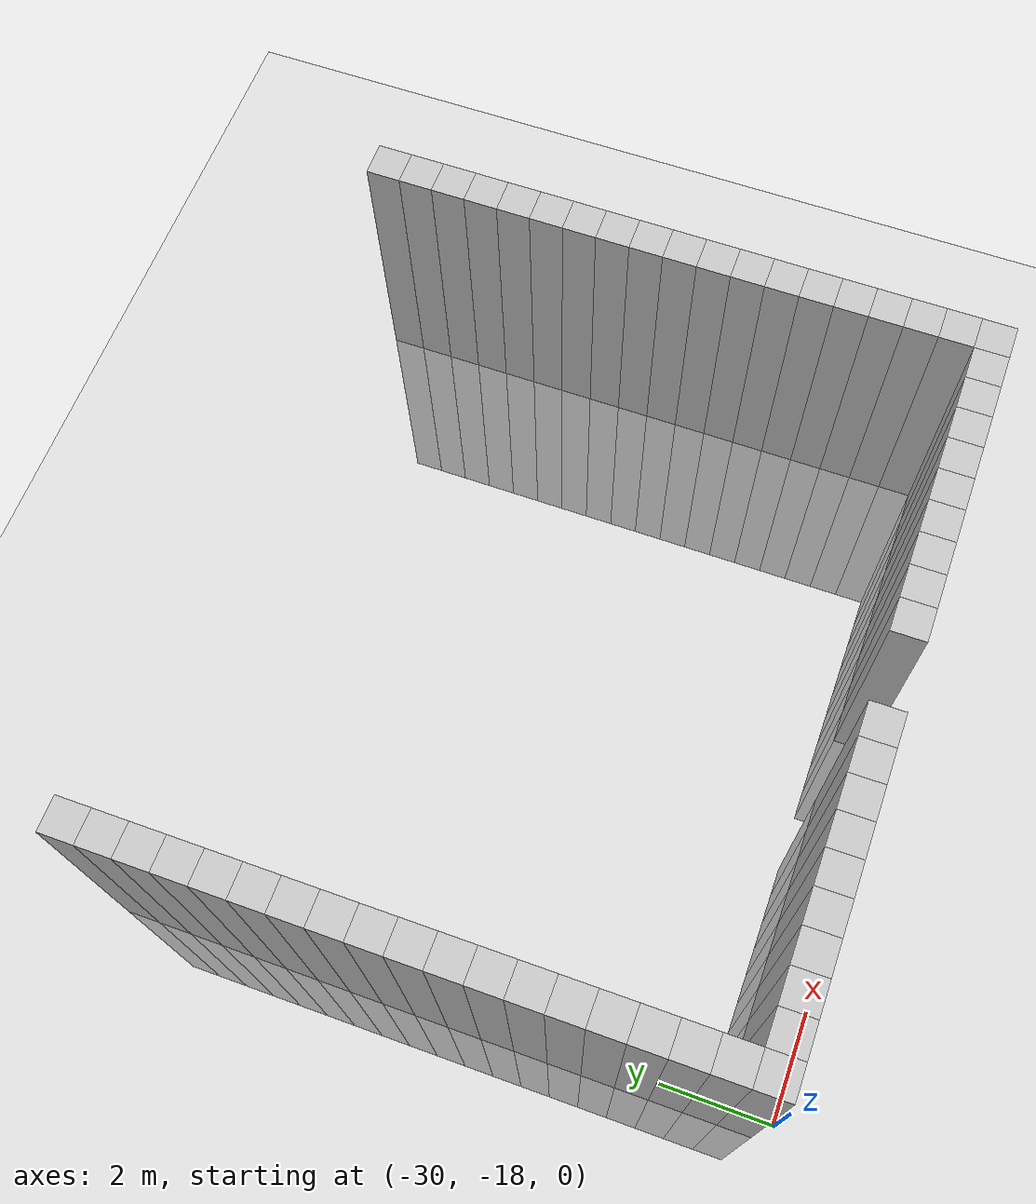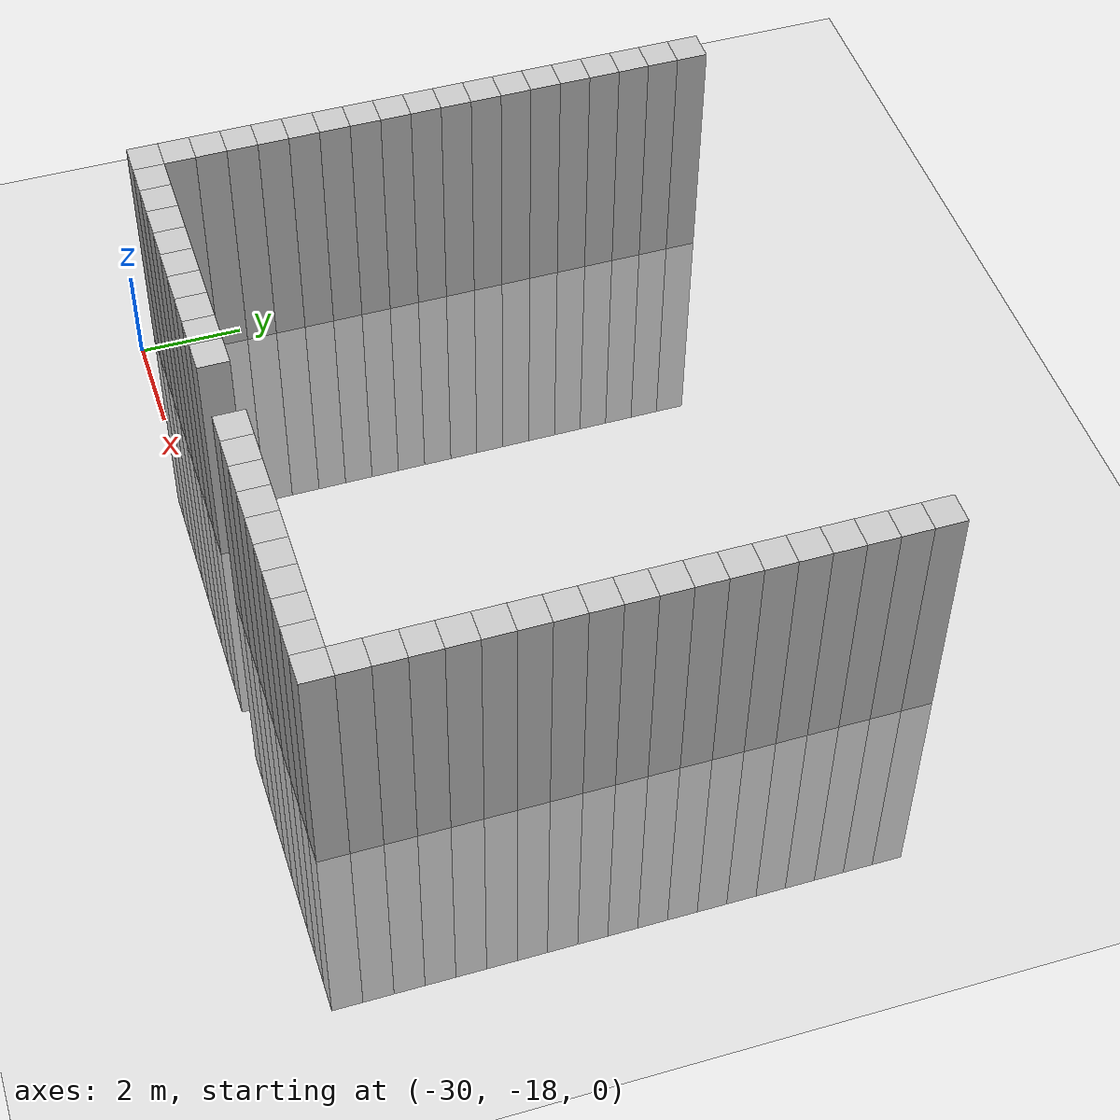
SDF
<sdf version="1.6">
 <world name="default">
  <model name="ground_plane">
   <static>1</static>
   <link name="link">
    <collision name="collision">
     <geometry><plane><normal>0 0 1</normal><size>100 100</size></plane></geometry>
     <surface><friction><ode><mu>100</mu><mu2>50</mu2></ode></friction></surface>
    </collision>
    <visual name="visual">
     <cast_shadows>0</cast_shadows>
     <geometry><plane><normal>0 0 1</normal><size>100 100</size></plane></geometry>
     <material>
      <script><uri>file://media/materials/scripts/gazebo.material</uri><name>Gazebo/Grey</name></script>
     </material>
    </visual>
   </link>
  </model>
  <model name="unit_cylinder_562">
   <static>1</static>
   <pose>-30 -17.4 0 0 -0 0</pose>
   <link name="link">
    <inertial>
     <mass>1</mass>
     <inertia><ixx>0.145833</ixx><ixy>0</ixy><ixz>0</ixz><iyy>0.145833</iyy><iyz>0</iyz><izz>0.125</izz></inertia>
    </inertial>
    <collision name="collision"><geometry><box><size>0.6 0.6 10</size></box></geometry></collision>
    <visual name="visual">
     <geometry><box><size>0.6 0.6 10</size></box></geometry>
     <material><ambient>0.753 0.753 0.753 1</ambient><diffuse>0.753 0.753 0.753 1</diffuse></material>
     <material>
      <script><name>Gazebo/Grey</name><uri>file://media/materials/scripts/gazebo.material</uri></script>
     </material>
    </visual>
   </link>
  </model>
  <model name="unit_cylinder_563">
   <static>1</static>
   <pose>-30 -16.8 0 0 -0 0</pose>
   <link name="link">
    <inertial>
     <mass>1</mass>
     <inertia><ixx>0.145833</ixx><ixy>0</ixy><ixz>0</ixz><iyy>0.145833</iyy><iyz>0</iyz><izz>0.125</izz></inertia>
    </inertial>
    <collision name="collision"><geometry><box><size>0.6 0.6 10</size></box></geometry></collision>
    <visual name="visual">
     <geometry><box><size>0.6 0.6 10</size></box></geometry>
     <material><ambient>0.753 0.753 0.753 1</ambient><diffuse>0.753 0.753 0.753 1</diffuse></material>
     <material>
      <script><name>Gazebo/Grey</name><uri>file://media/materials/scripts/gazebo.material</uri></script>
     </material>
    </visual>
   </link>
  </model>
  <model name="unit_cylinder_564">
   <static>1</static>
   <pose>-30 -16.2 0 0 -0 0</pose>
   <link name="link">
    <inertial>
     <mass>1</mass>
     <inertia><ixx>0.145833</ixx><ixy>0</ixy><ixz>0</ixz><iyy>0.145833</iyy><iyz>0</iyz><izz>0.125</izz></inertia>
    </inertial>
    <collision name="collision"><geometry><box><size>0.6 0.6 10</size></box></geometry></collision>
    <visual name="visual">
     <geometry><box><size>0.6 0.6 10</size></box></geometry>
     <material><ambient>0.753 0.753 0.753 1</ambient><diffuse>0.753 0.753 0.753 1</diffuse></material>
     <material>
      <script><name>Gazebo/Grey</name><uri>file://media/materials/scripts/gazebo.material</uri></script>
     </material>
    </visual>
   </link>
  </model>
  <model name="unit_cylinder_565">
   <static>1</static>
   <pose>-30 -15.6 0 0 -0 0</pose>
   <link name="link">
    <inertial>
     <mass>1</mass>
     <inertia><ixx>0.145833</ixx><ixy>0</ixy><ixz>0</ixz><iyy>0.145833</iyy><iyz>0</iyz><izz>0.125</izz></inertia>
    </inertial>
    <collision name="collision"><geometry><box><size>0.6 0.6 10</size></box></geometry></collision>
    <visual name="visual">
     <geometry><box><size>0.6 0.6 10</size></box></geometry>
     <material><ambient>0.753 0.753 0.753 1</ambient><diffuse>0.753 0.753 0.753 1</diffuse></material>
     <material>
      <script><name>Gazebo/Grey</name><uri>file://media/materials/scripts/gazebo.material</uri></script>
     </material>
    </visual>
   </link>
  </model>
  <model name="unit_cylinder_566">
   <static>1</static>
   <pose>-30 -15 0 0 -0 0</pose>
   <link name="link">
    <inertial>
     <mass>1</mass>
     <inertia><ixx>0.145833</ixx><ixy>0</ixy><ixz>0</ixz><iyy>0.145833</iyy><iyz>0</iyz><izz>0.125</izz></inertia>
    </inertial>
    <collision name="collision"><geometry><box><size>0.6 0.6 10</size></box></geometry></collision>
    <visual name="visual">
     <geometry><box><size>0.6 0.6 10</size></box></geometry>
     <material><ambient>0.753 0.753 0.753 1</ambient><diffuse>0.753 0.753 0.753 1</diffuse></material>
     <material>
      <script><name>Gazebo/Grey</name><uri>file://media/materials/scripts/gazebo.material</uri></script>
     </material>
    </visual>
   </link>
  </model>
  <model name="unit_cylinder_567">
   <static>1</static>
   <pose>-30 -14.4 0 0 -0 0</pose>
   <link name="link">
    <inertial>
     <mass>1</mass>
     <inertia><ixx>0.145833</ixx><ixy>0</ixy><ixz>0</ixz><iyy>0.145833</iyy><iyz>0</iyz><izz>0.125</izz></inertia>
    </inertial>
    <collision name="collision"><geometry><box><size>0.6 0.6 10</size></box></geometry></collision>
    <visual name="visual">
     <geometry><box><size>0.6 0.6 10</size></box></geometry>
     <material><ambient>0.753 0.753 0.753 1</ambient><diffuse>0.753 0.753 0.753 1</diffuse></material>
     <material>
      <script><name>Gazebo/Grey</name><uri>file://media/materials/scripts/gazebo.material</uri></script>
     </material>
    </visual>
   </link>
  </model>
  <model name="unit_cylinder_568">
   <static>1</static>
   <pose>-30 -13.8 0 0 -0 0</pose>
   <link name="link">
    <inertial>
     <mass>1</mass>
     <inertia><ixx>0.145833</ixx><ixy>0</ixy><ixz>0</ixz><iyy>0.145833</iyy><iyz>0</iyz><izz>0.125</izz></inertia>
    </inertial>
    <collision name="collision"><geometry><box><size>0.6 0.6 10</size></box></geometry></collision>
    <visual name="visual">
     <geometry><box><size>0.6 0.6 10</size></box></geometry>
     <material><ambient>0.753 0.753 0.753 1</ambient><diffuse>0.753 0.753 0.753 1</diffuse></material>
     <material>
      <script><name>Gazebo/Grey</name><uri>file://media/materials/scripts/gazebo.material</uri></script>
     </material>
    </visual>
   </link>
  </model>
  <model name="unit_cylinder_569">
   <static>1</static>
   <pose>-30 -13.2 0 0 -0 0</pose>
   <link name="link">
    <inertial>
     <mass>1</mass>
     <inertia><ixx>0.145833</ixx><ixy>0</ixy><ixz>0</ixz><iyy>0.145833</iyy><iyz>0</iyz><izz>0.125</izz></inertia>
    </inertial>
    <collision name="collision"><geometry><box><size>0.6 0.6 10</size></box></geometry></collision>
    <visual name="visual">
     <geometry><box><size>0.6 0.6 10</size></box></geometry>
     <material><ambient>0.753 0.753 0.753 1</ambient><diffuse>0.753 0.753 0.753 1</diffuse></material>
     <material>
      <script><name>Gazebo/Grey</name><uri>file://media/materials/scripts/gazebo.material</uri></script>
     </material>
    </visual>
   </link>
  </model>
  <model name="unit_cylinder_570">
   <static>1</static>
   <pose>-30 -12.6 0 0 -0 0</pose>
   <link name="link">
    <inertial>
     <mass>1</mass>
     <inertia><ixx>0.145833</ixx><ixy>0</ixy><ixz>0</ixz><iyy>0.145833</iyy><iyz>0</iyz><izz>0.125</izz></inertia>
    </inertial>
    <collision name="collision"><geometry><box><size>0.6 0.6 10</size></box></geometry></collision>
    <visual name="visual">
     <geometry><box><size>0.6 0.6 10</size></box></geometry>
     <material><ambient>0.753 0.753 0.753 1</ambient><diffuse>0.753 0.753 0.753 1</diffuse></material>
     <material>
      <script><name>Gazebo/Grey</name><uri>file://media/materials/scripts/gazebo.material</uri></script>
     </material>
    </visual>
   </link>
  </model>
  <model name="unit_cylinder_571">
   <static>1</static>
   <pose>-30 -12 0 0 -0 0</pose>
   <link name="link">
    <inertial>
     <mass>1</mass>
     <inertia><ixx>0.145833</ixx><ixy>0</ixy><ixz>0</ixz><iyy>0.145833</iyy><iyz>0</iyz><izz>0.125</izz></inertia>
    </inertial>
    <collision name="collision"><geometry><box><size>0.6 0.6 10</size></box></geometry></collision>
    <visual name="visual">
     <geometry><box><size>0.6 0.6 10</size></box></geometry>
     <material><ambient>0.753 0.753 0.753 1</ambient><diffuse>0.753 0.753 0.753 1</diffuse></material>
     <material>
      <script><name>Gazebo/Grey</name><uri>file://media/materials/scripts/gazebo.material</uri></script>
     </material>
    </visual>
   </link>
  </model>
  <model name="unit_cylinder_572">
   <static>1</static>
   <pose>-30 -11.4 0 0 -0 0</pose>
   <link name="link">
    <inertial>
     <mass>1</mass>
     <inertia><ixx>0.145833</ixx><ixy>0</ixy><ixz>0</ixz><iyy>0.145833</iyy><iyz>0</iyz><izz>0.125</izz></inertia>
    </inertial>
    <collision name="collision"><geometry><box><size>0.6 0.6 10</size></box></geometry></collision>
    <visual name="visual">
     <geometry><box><size>0.6 0.6 10</size></box></geometry>
     <material><ambient>0.753 0.753 0.753 1</ambient><diffuse>0.753 0.753 0.753 1</diffuse></material>
     <material>
      <script><name>Gazebo/Grey</name><uri>file://media/materials/scripts/gazebo.material</uri></script>
     </material>
    </visual>
   </link>
  </model>
  <model name="unit_cylinder_573">
   <static>1</static>
   <pose>-30 -10.8 0 0 -0 0</pose>
   <link name="link">
    <inertial>
     <mass>1</mass>
     <inertia><ixx>0.145833</ixx><ixy>0</ixy><ixz>0</ixz><iyy>0.145833</iyy><iyz>0</iyz><izz>0.125</izz></inertia>
    </inertial>
    <collision name="collision"><geometry><box><size>0.6 0.6 10</size></box></geometry></collision>
    <visual name="visual">
     <geometry><box><size>0.6 0.6 10</size></box></geometry>
     <material><ambient>0.753 0.753 0.753 1</ambient><diffuse>0.753 0.753 0.753 1</diffuse></material>
     <material>
      <script><name>Gazebo/Grey</name><uri>file://media/materials/scripts/gazebo.material</uri></script>
     </material>
    </visual>
   </link>
  </model>
  <model name="unit_cylinder_574">
   <static>1</static>
   <pose>-30 -10.2 0 0 -0 0</pose>
   <link name="link">
    <inertial>
     <mass>1</mass>
     <inertia><ixx>0.145833</ixx><ixy>0</ixy><ixz>0</ixz><iyy>0.145833</iyy><iyz>0</iyz><izz>0.125</izz></inertia>
    </inertial>
    <collision name="collision"><geometry><box><size>0.6 0.6 10</size></box></geometry></collision>
    <visual name="visual">
     <geometry><box><size>0.6 0.6 10</size></box></geometry>
     <material><ambient>0.753 0.753 0.753 1</ambient><diffuse>0.753 0.753 0.753 1</diffuse></material>
     <material>
      <script><name>Gazebo/Grey</name><uri>file://media/materials/scripts/gazebo.material</uri></script>
     </material>
    </visual>
   </link>
  </model>
  <model name="unit_cylinder_575">
   <static>1</static>
   <pose>-30 -9.6 0 0 -0 0</pose>
   <link name="link">
    <inertial>
     <mass>1</mass>
     <inertia><ixx>0.145833</ixx><ixy>0</ixy><ixz>0</ixz><iyy>0.145833</iyy><iyz>0</iyz><izz>0.125</izz></inertia>
    </inertial>
    <collision name="collision"><geometry><box><size>0.6 0.6 10</size></box></geometry></collision>
    <visual name="visual">
     <geometry><box><size>0.6 0.6 10</size></box></geometry>
     <material><ambient>0.753 0.753 0.753 1</ambient><diffuse>0.753 0.753 0.753 1</diffuse></material>
     <material>
      <script><name>Gazebo/Grey</name><uri>file://media/materials/scripts/gazebo.material</uri></script>
     </material>
    </visual>
   </link>
  </model>
  <model name="unit_cylinder_576">
   <static>1</static>
   <pose>-30 -9 0 0 -0 0</pose>
   <link name="link">
    <inertial>
     <mass>1</mass>
     <inertia><ixx>0.145833</ixx><ixy>0</ixy><ixz>0</ixz><iyy>0.145833</iyy><iyz>0</iyz><izz>0.125</izz></inertia>
    </inertial>
    <collision name="collision"><geometry><box><size>0.6 0.6 10</size></box></geometry></collision>
    <visual name="visual">
     <geometry><box><size>0.6 0.6 10</size></box></geometry>
     <material><ambient>0.753 0.753 0.753 1</ambient><diffuse>0.753 0.753 0.753 1</diffuse></material>
     <material>
      <script><name>Gazebo/Grey</name><uri>file://media/materials/scripts/gazebo.material</uri></script>
     </material>
    </visual>
   </link>
  </model>
  <model name="unit_cylinder_577">
   <static>1</static>
   <pose>-30 -8.4 0 0 -0 0</pose>
   <link name="link">
    <inertial>
     <mass>1</mass>
     <inertia><ixx>0.145833</ixx><ixy>0</ixy><ixz>0</ixz><iyy>0.145833</iyy><iyz>0</iyz><izz>0.125</izz></inertia>
    </inertial>
    <collision name="collision"><geometry><box><size>0.6 0.6 10</size></box></geometry></collision>
    <visual name="visual">
     <geometry><box><size>0.6 0.6 10</size></box></geometry>
     <material><ambient>0.753 0.753 0.753 1</ambient><diffuse>0.753 0.753 0.753 1</diffuse></material>
     <material>
      <script><name>Gazebo/Grey</name><uri>file://media/materials/scripts/gazebo.material</uri></script>
     </material>
    </visual>
   </link>
  </model>
  <model name="unit_cylinder_578">
   <static>1</static>
   <pose>-30 -7.8 0 0 -0 0</pose>
   <link name="link">
    <inertial>
     <mass>1</mass>
     <inertia><ixx>0.145833</ixx><ixy>0</ixy><ixz>0</ixz><iyy>0.145833</iyy><iyz>0</iyz><izz>0.125</izz></inertia>
    </inertial>
    <collision name="collision"><geometry><box><size>0.6 0.6 10</size></box></geometry></collision>
    <visual name="visual">
     <geometry><box><size>0.6 0.6 10</size></box></geometry>
     <material><ambient>0.753 0.753 0.753 1</ambient><diffuse>0.753 0.753 0.753 1</diffuse></material>
     <material>
      <script><name>Gazebo/Grey</name><uri>file://media/materials/scripts/gazebo.material</uri></script>
     </material>
    </visual>
   </link>
  </model>
  <model name="unit_cylinder_579">
   <static>1</static>
   <pose>-30 -7.2 0 0 -0 0</pose>
   <link name="link">
    <inertial>
     <mass>1</mass>
     <inertia><ixx>0.145833</ixx><ixy>0</ixy><ixz>0</ixz><iyy>0.145833</iyy><iyz>0</iyz><izz>0.125</izz></inertia>
    </inertial>
    <collision name="collision"><geometry><box><size>0.6 0.6 10</size></box></geometry></collision>
    <visual name="visual">
     <geometry><box><size>0.6 0.6 10</size></box></geometry>
     <material><ambient>0.753 0.753 0.753 1</ambient><diffuse>0.753 0.753 0.753 1</diffuse></material>
     <material>
      <script><name>Gazebo/Grey</name><uri>file://media/materials/scripts/gazebo.material</uri></script>
     </material>
    </visual>
   </link>
  </model>
  <model name="unit_cylinder_580">
   <static>1</static>
   <pose>-30 -6.6 0 0 -0 0</pose>
   <link name="link">
    <inertial>
     <mass>1</mass>
     <inertia><ixx>0.145833</ixx><ixy>0</ixy><ixz>0</ixz><iyy>0.145833</iyy><iyz>0</iyz><izz>0.125</izz></inertia>
    </inertial>
    <collision name="collision"><geometry><box><size>0.6 0.6 10</size></box></geometry></collision>
    <visual name="visual">
     <geometry><box><size>0.6 0.6 10</size></box></geometry>
     <material><ambient>0.753 0.753 0.753 1</ambient><diffuse>0.753 0.753 0.753 1</diffuse></material>
     <material>
      <script><name>Gazebo/Grey</name><uri>file://media/materials/scripts/gazebo.material</uri></script>
     </material>
    </visual>
   </link>
  </model>
  <model name="unit_cylinder_585">
   <static>1</static>
   <pose>-29.4 -17.4 0 0 -0 0</pose>
   <link name="link">
    <inertial>
     <mass>1</mass>
     <inertia><ixx>0.145833</ixx><ixy>0</ixy><ixz>0</ixz><iyy>0.145833</iyy><iyz>0</iyz><izz>0.125</izz></inertia>
    </inertial>
    <collision name="collision"><geometry><box><size>0.6 0.6 10</size></box></geometry></collision>
    <visual name="visual">
     <geometry><box><size>0.6 0.6 10</size></box></geometry>
     <material><ambient>0.753 0.753 0.753 1</ambient><diffuse>0.753 0.753 0.753 1</diffuse></material>
     <material>
      <script><name>Gazebo/Grey</name><uri>file://media/materials/scripts/gazebo.material</uri></script>
     </material>
    </visual>
   </link>
  </model>
  <model name="unit_cylinder_588">
   <static>1</static>
   <pose>-28.8 -17.4 0 0 -0 0</pose>
   <link name="link">
    <inertial>
     <mass>1</mass>
     <inertia><ixx>0.145833</ixx><ixy>0</ixy><ixz>0</ixz><iyy>0.145833</iyy><iyz>0</iyz><izz>0.125</izz></inertia>
    </inertial>
    <collision name="collision"><geometry><box><size>0.6 0.6 10</size></box></geometry></collision>
    <visual name="visual">
     <geometry><box><size>0.6 0.6 10</size></box></geometry>
     <material><ambient>0.753 0.753 0.753 1</ambient><diffuse>0.753 0.753 0.753 1</diffuse></material>
     <material>
      <script><name>Gazebo/Grey</name><uri>file://media/materials/scripts/gazebo.material</uri></script>
     </material>
    </visual>
   </link>
  </model>
  <model name="unit_cylinder_591">
   <static>1</static>
   <pose>-28.2 -17.4 0 0 -0 0</pose>
   <link name="link">
    <inertial>
     <mass>1</mass>
     <inertia><ixx>0.145833</ixx><ixy>0</ixy><ixz>0</ixz><iyy>0.145833</iyy><iyz>0</iyz><izz>0.125</izz></inertia>
    </inertial>
    <collision name="collision"><geometry><box><size>0.6 0.6 10</size></box></geometry></collision>
    <visual name="visual">
     <geometry><box><size>0.6 0.6 10</size></box></geometry>
     <material><ambient>0.753 0.753 0.753 1</ambient><diffuse>0.753 0.753 0.753 1</diffuse></material>
     <material>
      <script><name>Gazebo/Grey</name><uri>file://media/materials/scripts/gazebo.material</uri></script>
     </material>
    </visual>
   </link>
  </model>
  <model name="unit_cylinder_594">
   <static>1</static>
   <pose>-27.6 -17.4 0 0 -0 0</pose>
   <link name="link">
    <inertial>
     <mass>1</mass>
     <inertia><ixx>0.145833</ixx><ixy>0</ixy><ixz>0</ixz><iyy>0.145833</iyy><iyz>0</iyz><izz>0.125</izz></inertia>
    </inertial>
    <collision name="collision"><geometry><box><size>0.6 0.6 10</size></box></geometry></collision>
    <visual name="visual">
     <geometry><box><size>0.6 0.6 10</size></box></geometry>
     <material><ambient>0.753 0.753 0.753 1</ambient><diffuse>0.753 0.753 0.753 1</diffuse></material>
     <material>
      <script><name>Gazebo/Grey</name><uri>file://media/materials/scripts/gazebo.material</uri></script>
     </material>
    </visual>
   </link>
  </model>
  <model name="unit_cylinder_597">
   <static>1</static>
   <pose>-27 -17.4 0 0 -0 0</pose>
   <link name="link">
    <inertial>
     <mass>1</mass>
     <inertia><ixx>0.145833</ixx><ixy>0</ixy><ixz>0</ixz><iyy>0.145833</iyy><iyz>0</iyz><izz>0.125</izz></inertia>
    </inertial>
    <collision name="collision"><geometry><box><size>0.6 0.6 10</size></box></geometry></collision>
    <visual name="visual">
     <geometry><box><size>0.6 0.6 10</size></box></geometry>
     <material><ambient>0.753 0.753 0.753 1</ambient><diffuse>0.753 0.753 0.753 1</diffuse></material>
     <material>
      <script><name>Gazebo/Grey</name><uri>file://media/materials/scripts/gazebo.material</uri></script>
     </material>
    </visual>
   </link>
  </model>
  <model name="unit_cylinder_600">
   <static>1</static>
   <pose>-26.4 -17.4 0 0 -0 0</pose>
   <link name="link">
    <inertial>
     <mass>1</mass>
     <inertia><ixx>0.145833</ixx><ixy>0</ixy><ixz>0</ixz><iyy>0.145833</iyy><iyz>0</iyz><izz>0.125</izz></inertia>
    </inertial>
    <collision name="collision"><geometry><box><size>0.6 0.6 10</size></box></geometry></collision>
    <visual name="visual">
     <geometry><box><size>0.6 0.6 10</size></box></geometry>
     <material><ambient>0.753 0.753 0.753 1</ambient><diffuse>0.753 0.753 0.753 1</diffuse></material>
     <material>
      <script><name>Gazebo/Grey</name><uri>file://media/materials/scripts/gazebo.material</uri></script>
     </material>
    </visual>
   </link>
  </model>
  <model name="unit_cylinder_603">
   <static>1</static>
   <pose>-25.8 -17.4 0 0 -0 0</pose>
   <link name="link">
    <inertial>
     <mass>1</mass>
     <inertia><ixx>0.145833</ixx><ixy>0</ixy><ixz>0</ixz><iyy>0.145833</iyy><iyz>0</iyz><izz>0.125</izz></inertia>
    </inertial>
    <collision name="collision"><geometry><box><size>0.6 0.6 10</size></box></geometry></collision>
    <visual name="visual">
     <geometry><box><size>0.6 0.6 10</size></box></geometry>
     <material><ambient>0.753 0.753 0.753 1</ambient><diffuse>0.753 0.753 0.753 1</diffuse></material>
     <material>
      <script><name>Gazebo/Grey</name><uri>file://media/materials/scripts/gazebo.material</uri></script>
     </material>
    </visual>
   </link>
  </model>
  <model name="unit_cylinder_606">
   <static>1</static>
   <pose>-25.2 -17.4 0 0 -0 0</pose>
   <link name="link">
    <inertial>
     <mass>1</mass>
     <inertia><ixx>0.145833</ixx><ixy>0</ixy><ixz>0</ixz><iyy>0.145833</iyy><iyz>0</iyz><izz>0.125</izz></inertia>
    </inertial>
    <collision name="collision"><geometry><box><size>0.6 0.6 10</size></box></geometry></collision>
    <visual name="visual">
     <geometry><box><size>0.6 0.6 10</size></box></geometry>
     <material><ambient>0.753 0.753 0.753 1</ambient><diffuse>0.753 0.753 0.753 1</diffuse></material>
     <material>
      <script><name>Gazebo/Grey</name><uri>file://media/materials/scripts/gazebo.material</uri></script>
     </material>
    </visual>
   </link>
  </model>
  <model name="unit_cylinder_609">
   <static>1</static>
   <pose>-24.6 -17.4 0 0 -0 0</pose>
   <link name="link">
    <inertial>
     <mass>1</mass>
     <inertia><ixx>0.145833</ixx><ixy>0</ixy><ixz>0</ixz><iyy>0.145833</iyy><iyz>0</iyz><izz>0.125</izz></inertia>
    </inertial>
    <collision name="collision"><geometry><box><size>0.6 0.6 10</size></box></geometry></collision>
    <visual name="visual">
     <geometry><box><size>0.6 0.6 10</size></box></geometry>
     <material><ambient>0.753 0.753 0.753 1</ambient><diffuse>0.753 0.753 0.753 1</diffuse></material>
     <material>
      <script><name>Gazebo/Grey</name><uri>file://media/materials/scripts/gazebo.material</uri></script>
     </material>
    </visual>
   </link>
  </model>
  <model name="unit_cylinder_618">
   <static>1</static>
   <pose>-22.8 -17.4 0 0 -0 0</pose>
   <link name="link">
    <inertial>
     <mass>1</mass>
     <inertia><ixx>0.145833</ixx><ixy>0</ixy><ixz>0</ixz><iyy>0.145833</iyy><iyz>0</iyz><izz>0.125</izz></inertia>
    </inertial>
    <collision name="collision"><geometry><box><size>0.6 0.6 10</size></box></geometry></collision>
    <visual name="visual">
     <geometry><box><size>0.6 0.6 10</size></box></geometry>
     <material><ambient>0.753 0.753 0.753 1</ambient><diffuse>0.753 0.753 0.753 1</diffuse></material>
     <material>
      <script><name>Gazebo/Grey</name><uri>file://media/materials/scripts/gazebo.material</uri></script>
     </material>
    </visual>
   </link>
  </model>
  <model name="unit_cylinder_621">
   <static>1</static>
   <pose>-22.2 -17.4 0 0 -0 0</pose>
   <link name="link">
    <inertial>
     <mass>1</mass>
     <inertia><ixx>0.145833</ixx><ixy>0</ixy><ixz>0</ixz><iyy>0.145833</iyy><iyz>0</iyz><izz>0.125</izz></inertia>
    </inertial>
    <collision name="collision"><geometry><box><size>0.6 0.6 10</size></box></geometry></collision>
    <visual name="visual">
     <geometry><box><size>0.6 0.6 10</size></box></geometry>
     <material><ambient>0.753 0.753 0.753 1</ambient><diffuse>0.753 0.753 0.753 1</diffuse></material>
     <material>
      <script><name>Gazebo/Grey</name><uri>file://media/materials/scripts/gazebo.material</uri></script>
     </material>
    </visual>
   </link>
  </model>
  <model name="unit_cylinder_624">
   <static>1</static>
   <pose>-21.6 -17.4 0 0 -0 0</pose>
   <link name="link">
    <inertial>
     <mass>1</mass>
     <inertia><ixx>0.145833</ixx><ixy>0</ixy><ixz>0</ixz><iyy>0.145833</iyy><iyz>0</iyz><izz>0.125</izz></inertia>
    </inertial>
    <collision name="collision"><geometry><box><size>0.6 0.6 10</size></box></geometry></collision>
    <visual name="visual">
     <geometry><box><size>0.6 0.6 10</size></box></geometry>
     <material><ambient>0.753 0.753 0.753 1</ambient><diffuse>0.753 0.753 0.753 1</diffuse></material>
     <material>
      <script><name>Gazebo/Grey</name><uri>file://media/materials/scripts/gazebo.material</uri></script>
     </material>
    </visual>
   </link>
  </model>
  <model name="unit_cylinder_627">
   <static>1</static>
   <pose>-21 -17.4 0 0 -0 0</pose>
   <link name="link">
    <inertial>
     <mass>1</mass>
     <inertia><ixx>0.145833</ixx><ixy>0</ixy><ixz>0</ixz><iyy>0.145833</iyy><iyz>0</iyz><izz>0.125</izz></inertia>
    </inertial>
    <collision name="collision"><geometry><box><size>0.6 0.6 10</size></box></geometry></collision>
    <visual name="visual">
     <geometry><box><size>0.6 0.6 10</size></box></geometry>
     <material><ambient>0.753 0.753 0.753 1</ambient><diffuse>0.753 0.753 0.753 1</diffuse></material>
     <material>
      <script><name>Gazebo/Grey</name><uri>file://media/materials/scripts/gazebo.material</uri></script>
     </material>
    </visual>
   </link>
  </model>
  <model name="unit_cylinder_630">
   <static>1</static>
   <pose>-20.4 -17.4 0 0 -0 0</pose>
   <link name="link">
    <inertial>
     <mass>1</mass>
     <inertia><ixx>0.145833</ixx><ixy>0</ixy><ixz>0</ixz><iyy>0.145833</iyy><iyz>0</iyz><izz>0.125</izz></inertia>
    </inertial>
    <collision name="collision"><geometry><box><size>0.6 0.6 10</size></box></geometry></collision>
    <visual name="visual">
     <geometry><box><size>0.6 0.6 10</size></box></geometry>
     <material><ambient>0.753 0.753 0.753 1</ambient><diffuse>0.753 0.753 0.753 1</diffuse></material>
     <material>
      <script><name>Gazebo/Grey</name><uri>file://media/materials/scripts/gazebo.material</uri></script>
     </material>
    </visual>
   </link>
  </model>
  <model name="unit_cylinder_633">
   <static>1</static>
   <pose>-19.8 -17.4 0 0 -0 0</pose>
   <link name="link">
    <inertial>
     <mass>1</mass>
     <inertia><ixx>0.145833</ixx><ixy>0</ixy><ixz>0</ixz><iyy>0.145833</iyy><iyz>0</iyz><izz>0.125</izz></inertia>
    </inertial>
    <collision name="collision"><geometry><box><size>0.6 0.6 10</size></box></geometry></collision>
    <visual name="visual">
     <geometry><box><size>0.6 0.6 10</size></box></geometry>
     <material><ambient>0.753 0.753 0.753 1</ambient><diffuse>0.753 0.753 0.753 1</diffuse></material>
     <material>
      <script><name>Gazebo/Grey</name><uri>file://media/materials/scripts/gazebo.material</uri></script>
     </material>
    </visual>
   </link>
  </model>
  <model name="unit_cylinder_636">
   <static>1</static>
   <pose>-19.2 -17.4 0 0 -0 0</pose>
   <link name="link">
    <inertial>
     <mass>1</mass>
     <inertia><ixx>0.145833</ixx><ixy>0</ixy><ixz>0</ixz><iyy>0.145833</iyy><iyz>0</iyz><izz>0.125</izz></inertia>
    </inertial>
    <collision name="collision"><geometry><box><size>0.6 0.6 10</size></box></geometry></collision>
    <visual name="visual">
     <geometry><box><size>0.6 0.6 10</size></box></geometry>
     <material><ambient>0.753 0.753 0.753 1</ambient><diffuse>0.753 0.753 0.753 1</diffuse></material>
     <material>
      <script><name>Gazebo/Grey</name><uri>file://media/materials/scripts/gazebo.material</uri></script>
     </material>
    </visual>
   </link>
  </model>
  <model name="unit_cylinder_639">
   <static>1</static>
   <pose>-18.6 -17.4 0 0 -0 0</pose>
   <link name="link">
    <inertial>
     <mass>1</mass>
     <inertia><ixx>0.145833</ixx><ixy>0</ixy><ixz>0</ixz><iyy>0.145833</iyy><iyz>0</iyz><izz>0.125</izz></inertia>
    </inertial>
    <collision name="collision"><geometry><box><size>0.6 0.6 10</size></box></geometry></collision>
    <visual name="visual">
     <geometry><box><size>0.6 0.6 10</size></box></geometry>
     <material><ambient>0.753 0.753 0.753 1</ambient><diffuse>0.753 0.753 0.753 1</diffuse></material>
     <material>
      <script><name>Gazebo/Grey</name><uri>file://media/materials/scripts/gazebo.material</uri></script>
     </material>
    </visual>
   </link>
  </model>
  <model name="unit_cylinder_642">
   <static>1</static>
   <pose>-18 -17.4 0 0 -0 0</pose>
   <link name="link">
    <inertial>
     <mass>1</mass>
     <inertia><ixx>0.145833</ixx><ixy>0</ixy><ixz>0</ixz><iyy>0.145833</iyy><iyz>0</iyz><izz>0.125</izz></inertia>
    </inertial>
    <collision name="collision"><geometry><box><size>0.6 0.6 10</size></box></geometry></collision>
    <visual name="visual">
     <geometry><box><size>0.6 0.6 10</size></box></geometry>
     <material><ambient>0.753 0.753 0.753 1</ambient><diffuse>0.753 0.753 0.753 1</diffuse></material>
     <material>
      <script><name>Gazebo/Grey</name><uri>file://media/materials/scripts/gazebo.material</uri></script>
     </material>
    </visual>
   </link>
  </model>
  <model name="unit_cylinder_665">
   <static>1</static>
   <pose>-17.4 -17.4 0 0 -0 0</pose>
   <link name="link">
    <inertial>
     <mass>1</mass>
     <inertia><ixx>0.145833</ixx><ixy>0</ixy><ixz>0</ixz><iyy>0.145833</iyy><iyz>0</iyz><izz>0.125</izz></inertia>
    </inertial>
    <collision name="collision"><geometry><box><size>0.6 0.6 10</size></box></geometry></collision>
    <visual name="visual">
     <geometry><box><size>0.6 0.6 10</size></box></geometry>
     <material><ambient>0.753 0.753 0.753 1</ambient><diffuse>0.753 0.753 0.753 1</diffuse></material>
     <material>
      <script><name>Gazebo/Grey</name><uri>file://media/materials/scripts/gazebo.material</uri></script>
     </material>
    </visual>
   </link>
  </model>
  <model name="unit_cylinder_666">
   <static>1</static>
   <pose>-17.4 -16.8 0 0 -0 0</pose>
   <link name="link">
    <inertial>
     <mass>1</mass>
     <inertia><ixx>0.145833</ixx><ixy>0</ixy><ixz>0</ixz><iyy>0.145833</iyy><iyz>0</iyz><izz>0.125</izz></inertia>
    </inertial>
    <collision name="collision"><geometry><box><size>0.6 0.6 10</size></box></geometry></collision>
    <visual name="visual">
     <geometry><box><size>0.6 0.6 10</size></box></geometry>
     <material><ambient>0.753 0.753 0.753 1</ambient><diffuse>0.753 0.753 0.753 1</diffuse></material>
     <material>
      <script><name>Gazebo/Grey</name><uri>file://media/materials/scripts/gazebo.material</uri></script>
     </material>
    </visual>
   </link>
  </model>
  <model name="unit_cylinder_667">
   <static>1</static>
   <pose>-17.4 -16.2 0 0 -0 0</pose>
   <link name="link">
    <inertial>
     <mass>1</mass>
     <inertia><ixx>0.145833</ixx><ixy>0</ixy><ixz>0</ixz><iyy>0.145833</iyy><iyz>0</iyz><izz>0.125</izz></inertia>
    </inertial>
    <collision name="collision"><geometry><box><size>0.6 0.6 10</size></box></geometry></collision>
    <visual name="visual">
     <geometry><box><size>0.6 0.6 10</size></box></geometry>
     <material><ambient>0.753 0.753 0.753 1</ambient><diffuse>0.753 0.753 0.753 1</diffuse></material>
     <material>
      <script><name>Gazebo/Grey</name><uri>file://media/materials/scripts/gazebo.material</uri></script>
     </material>
    </visual>
   </link>
  </model>
  <model name="unit_cylinder_668">
   <static>1</static>
   <pose>-17.4 -15.6 0 0 -0 0</pose>
   <link name="link">
    <inertial>
     <mass>1</mass>
     <inertia><ixx>0.145833</ixx><ixy>0</ixy><ixz>0</ixz><iyy>0.145833</iyy><iyz>0</iyz><izz>0.125</izz></inertia>
    </inertial>
    <collision name="collision"><geometry><box><size>0.6 0.6 10</size></box></geometry></collision>
    <visual name="visual">
     <geometry><box><size>0.6 0.6 10</size></box></geometry>
     <material><ambient>0.753 0.753 0.753 1</ambient><diffuse>0.753 0.753 0.753 1</diffuse></material>
     <material>
      <script><name>Gazebo/Grey</name><uri>file://media/materials/scripts/gazebo.material</uri></script>
     </material>
    </visual>
   </link>
  </model>
  <model name="unit_cylinder_669">
   <static>1</static>
   <pose>-17.4 -15 0 0 -0 0</pose>
   <link name="link">
    <inertial>
     <mass>1</mass>
     <inertia><ixx>0.145833</ixx><ixy>0</ixy><ixz>0</ixz><iyy>0.145833</iyy><iyz>0</iyz><izz>0.125</izz></inertia>
    </inertial>
    <collision name="collision"><geometry><box><size>0.6 0.6 10</size></box></geometry></collision>
    <visual name="visual">
     <geometry><box><size>0.6 0.6 10</size></box></geometry>
     <material><ambient>0.753 0.753 0.753 1</ambient><diffuse>0.753 0.753 0.753 1</diffuse></material>
     <material>
      <script><name>Gazebo/Grey</name><uri>file://media/materials/scripts/gazebo.material</uri></script>
     </material>
    </visual>
   </link>
  </model>
  <model name="unit_cylinder_670">
   <static>1</static>
   <pose>-17.4 -14.4 0 0 -0 0</pose>
   <link name="link">
    <inertial>
     <mass>1</mass>
     <inertia><ixx>0.145833</ixx><ixy>0</ixy><ixz>0</ixz><iyy>0.145833</iyy><iyz>0</iyz><izz>0.125</izz></inertia>
    </inertial>
    <collision name="collision"><geometry><box><size>0.6 0.6 10</size></box></geometry></collision>
    <visual name="visual">
     <geometry><box><size>0.6 0.6 10</size></box></geometry>
     <material><ambient>0.753 0.753 0.753 1</ambient><diffuse>0.753 0.753 0.753 1</diffuse></material>
     <material>
      <script><name>Gazebo/Grey</name><uri>file://media/materials/scripts/gazebo.material</uri></script>
     </material>
    </visual>
   </link>
  </model>
  <model name="unit_cylinder_671">
   <static>1</static>
   <pose>-17.4 -13.8 0 0 -0 0</pose>
   <link name="link">
    <inertial>
     <mass>1</mass>
     <inertia><ixx>0.145833</ixx><ixy>0</ixy><ixz>0</ixz><iyy>0.145833</iyy><iyz>0</iyz><izz>0.125</izz></inertia>
    </inertial>
    <collision name="collision"><geometry><box><size>0.6 0.6 10</size></box></geometry></collision>
    <visual name="visual">
     <geometry><box><size>0.6 0.6 10</size></box></geometry>
     <material><ambient>0.753 0.753 0.753 1</ambient><diffuse>0.753 0.753 0.753 1</diffuse></material>
     <material>
      <script><name>Gazebo/Grey</name><uri>file://media/materials/scripts/gazebo.material</uri></script>
     </material>
    </visual>
   </link>
  </model>
  <model name="unit_cylinder_672">
   <static>1</static>
   <pose>-17.4 -13.2 0 0 -0 0</pose>
   <link name="link">
    <inertial>
     <mass>1</mass>
     <inertia><ixx>0.145833</ixx><ixy>0</ixy><ixz>0</ixz><iyy>0.145833</iyy><iyz>0</iyz><izz>0.125</izz></inertia>
    </inertial>
    <collision name="collision"><geometry><box><size>0.6 0.6 10</size></box></geometry></collision>
    <visual name="visual">
     <geometry><box><size>0.6 0.6 10</size></box></geometry>
     <material><ambient>0.753 0.753 0.753 1</ambient><diffuse>0.753 0.753 0.753 1</diffuse></material>
     <material>
      <script><name>Gazebo/Grey</name><uri>file://media/materials/scripts/gazebo.material</uri></script>
     </material>
    </visual>
   </link>
  </model>
  <model name="unit_cylinder_673">
   <static>1</static>
   <pose>-17.4 -12.6 0 0 -0 0</pose>
   <link name="link">
    <inertial>
     <mass>1</mass>
     <inertia><ixx>0.145833</ixx><ixy>0</ixy><ixz>0</ixz><iyy>0.145833</iyy><iyz>0</iyz><izz>0.125</izz></inertia>
    </inertial>
    <collision name="collision"><geometry><box><size>0.6 0.6 10</size></box></geometry></collision>
    <visual name="visual">
     <geometry><box><size>0.6 0.6 10</size></box></geometry>
     <material><ambient>0.753 0.753 0.753 1</ambient><diffuse>0.753 0.753 0.753 1</diffuse></material>
     <material>
      <script><name>Gazebo/Grey</name><uri>file://media/materials/scripts/gazebo.material</uri></script>
     </material>
    </visual>
   </link>
  </model>
  <model name="unit_cylinder_674">
   <static>1</static>
   <pose>-17.4 -12 0 0 -0 0</pose>
   <link name="link">
    <inertial>
     <mass>1</mass>
     <inertia><ixx>0.145833</ixx><ixy>0</ixy><ixz>0</ixz><iyy>0.145833</iyy><iyz>0</iyz><izz>0.125</izz></inertia>
    </inertial>
    <collision name="collision"><geometry><box><size>0.6 0.6 10</size></box></geometry></collision>
    <visual name="visual">
     <geometry><box><size>0.6 0.6 10</size></box></geometry>
     <material><ambient>0.753 0.753 0.753 1</ambient><diffuse>0.753 0.753 0.753 1</diffuse></material>
     <material>
      <script><name>Gazebo/Grey</name><uri>file://media/materials/scripts/gazebo.material</uri></script>
     </material>
    </visual>
   </link>
  </model>
  <model name="unit_cylinder_675">
   <static>1</static>
   <pose>-17.4 -11.4 0 0 -0 0</pose>
   <link name="link">
    <inertial>
     <mass>1</mass>
     <inertia><ixx>0.145833</ixx><ixy>0</ixy><ixz>0</ixz><iyy>0.145833</iyy><iyz>0</iyz><izz>0.125</izz></inertia>
    </inertial>
    <collision name="collision"><geometry><box><size>0.6 0.6 10</size></box></geometry></collision>
    <visual name="visual">
     <geometry><box><size>0.6 0.6 10</size></box></geometry>
     <material><ambient>0.753 0.753 0.753 1</ambient><diffuse>0.753 0.753 0.753 1</diffuse></material>
     <material>
      <script><name>Gazebo/Grey</name><uri>file://media/materials/scripts/gazebo.material</uri></script>
     </material>
    </visual>
   </link>
  </model>
  <model name="unit_cylinder_676">
   <static>1</static>
   <pose>-17.4 -10.8 0 0 -0 0</pose>
   <link name="link">
    <inertial>
     <mass>1</mass>
     <inertia><ixx>0.145833</ixx><ixy>0</ixy><ixz>0</ixz><iyy>0.145833</iyy><iyz>0</iyz><izz>0.125</izz></inertia>
    </inertial>
    <collision name="collision"><geometry><box><size>0.6 0.6 10</size></box></geometry></collision>
    <visual name="visual">
     <geometry><box><size>0.6 0.6 10</size></box></geometry>
     <material><ambient>0.753 0.753 0.753 1</ambient><diffuse>0.753 0.753 0.753 1</diffuse></material>
     <material>
      <script><name>Gazebo/Grey</name><uri>file://media/materials/scripts/gazebo.material</uri></script>
     </material>
    </visual>
   </link>
  </model>
  <model name="unit_cylinder_677">
   <static>1</static>
   <pose>-17.4 -10.2 0 0 -0 0</pose>
   <link name="link">
    <inertial>
     <mass>1</mass>
     <inertia><ixx>0.145833</ixx><ixy>0</ixy><ixz>0</ixz><iyy>0.145833</iyy><iyz>0</iyz><izz>0.125</izz></inertia>
    </inertial>
    <collision name="collision"><geometry><box><size>0.6 0.6 10</size></box></geometry></collision>
    <visual name="visual">
     <geometry><box><size>0.6 0.6 10</size></box></geometry>
     <material><ambient>0.753 0.753 0.753 1</ambient><diffuse>0.753 0.753 0.753 1</diffuse></material>
     <material>
      <script><name>Gazebo/Grey</name><uri>file://media/materials/scripts/gazebo.material</uri></script>
     </material>
    </visual>
   </link>
  </model>
  <model name="unit_cylinder_678">
   <static>1</static>
   <pose>-17.4 -9.6 0 0 -0 0</pose>
   <link name="link">
    <inertial>
     <mass>1</mass>
     <inertia><ixx>0.145833</ixx><ixy>0</ixy><ixz>0</ixz><iyy>0.145833</iyy><iyz>0</iyz><izz>0.125</izz></inertia>
    </inertial>
    <collision name="collision"><geometry><box><size>0.6 0.6 10</size></box></geometry></collision>
    <visual name="visual">
     <geometry><box><size>0.6 0.6 10</size></box></geometry>
     <material><ambient>0.753 0.753 0.753 1</ambient><diffuse>0.753 0.753 0.753 1</diffuse></material>
     <material>
      <script><name>Gazebo/Grey</name><uri>file://media/materials/scripts/gazebo.material</uri></script>
     </material>
    </visual>
   </link>
  </model>
  <model name="unit_cylinder_679">
   <static>1</static>
   <pose>-17.4 -9 0 0 -0 0</pose>
   <link name="link">
    <inertial>
     <mass>1</mass>
     <inertia><ixx>0.145833</ixx><ixy>0</ixy><ixz>0</ixz><iyy>0.145833</iyy><iyz>0</iyz><izz>0.125</izz></inertia>
    </inertial>
    <collision name="collision"><geometry><box><size>0.6 0.6 10</size></box></geometry></collision>
    <visual name="visual">
     <geometry><box><size>0.6 0.6 10</size></box></geometry>
     <material><ambient>0.753 0.753 0.753 1</ambient><diffuse>0.753 0.753 0.753 1</diffuse></material>
     <material>
      <script><name>Gazebo/Grey</name><uri>file://media/materials/scripts/gazebo.material</uri></script>
     </material>
    </visual>
   </link>
  </model>
  <model name="unit_cylinder_680">
   <static>1</static>
   <pose>-17.4 -8.4 0 0 -0 0</pose>
   <link name="link">
    <inertial>
     <mass>1</mass>
     <inertia><ixx>0.145833</ixx><ixy>0</ixy><ixz>0</ixz><iyy>0.145833</iyy><iyz>0</iyz><izz>0.125</izz></inertia>
    </inertial>
    <collision name="collision"><geometry><box><size>0.6 0.6 10</size></box></geometry></collision>
    <visual name="visual">
     <geometry><box><size>0.6 0.6 10</size></box></geometry>
     <material><ambient>0.753 0.753 0.753 1</ambient><diffuse>0.753 0.753 0.753 1</diffuse></material>
     <material>
      <script><name>Gazebo/Grey</name><uri>file://media/materials/scripts/gazebo.material</uri></script>
     </material>
    </visual>
   </link>
  </model>
  <model name="unit_cylinder_681">
   <static>1</static>
   <pose>-17.4 -7.8 0 0 -0 0</pose>
   <link name="link">
    <inertial>
     <mass>1</mass>
     <inertia><ixx>0.145833</ixx><ixy>0</ixy><ixz>0</ixz><iyy>0.145833</iyy><iyz>0</iyz><izz>0.125</izz></inertia>
    </inertial>
    <collision name="collision"><geometry><box><size>0.6 0.6 10</size></box></geometry></collision>
    <visual name="visual">
     <geometry><box><size>0.6 0.6 10</size></box></geometry>
     <material><ambient>0.753 0.753 0.753 1</ambient><diffuse>0.753 0.753 0.753 1</diffuse></material>
     <material>
      <script><name>Gazebo/Grey</name><uri>file://media/materials/scripts/gazebo.material</uri></script>
     </material>
    </visual>
   </link>
  </model>
  <model name="unit_cylinder_682">
   <static>1</static>
   <pose>-17.4 -7.2 0 0 -0 0</pose>
   <link name="link">
    <inertial>
     <mass>1</mass>
     <inertia><ixx>0.145833</ixx><ixy>0</ixy><ixz>0</ixz><iyy>0.145833</iyy><iyz>0</iyz><izz>0.125</izz></inertia>
    </inertial>
    <collision name="collision"><geometry><box><size>0.6 0.6 10</size></box></geometry></collision>
    <visual name="visual">
     <geometry><box><size>0.6 0.6 10</size></box></geometry>
     <material><ambient>0.753 0.753 0.753 1</ambient><diffuse>0.753 0.753 0.753 1</diffuse></material>
     <material>
      <script><name>Gazebo/Grey</name><uri>file://media/materials/scripts/gazebo.material</uri></script>
     </material>
    </visual>
   </link>
  </model>
  <model name="unit_cylinder_683">
   <static>1</static>
   <pose>-17.4 -6.6 0 0 -0 0</pose>
   <link name="link">
    <inertial>
     <mass>1</mass>
     <inertia><ixx>0.145833</ixx><ixy>0</ixy><ixz>0</ixz><iyy>0.145833</iyy><iyz>0</iyz><izz>0.125</izz></inertia>
    </inertial>
    <collision name="collision"><geometry><box><size>0.6 0.6 10</size></box></geometry></collision>
    <visual name="visual">
     <geometry><box><size>0.6 0.6 10</size></box></geometry>
     <material><ambient>0.753 0.753 0.753 1</ambient><diffuse>0.753 0.753 0.753 1</diffuse></material>
     <material>
      <script><name>Gazebo/Grey</name><uri>file://media/materials/scripts/gazebo.material</uri></script>
     </material>
    </visual>
   </link>
  </model>
  <model name="hinge_door">
   <link name="link_0">
    <inertial>
     <mass>0.11</mass>
     <inertia>
      <ixx>0.0366896</ixx>
      <ixy>0</ixy>
      <ixz>0</ixz>
      <iyy>0.0477583</iyy>
      <iyz>0</iyz>
      <izz>0.0111146</izz>
     </inertia>
    </inertial>
    <pose>0.25 0 1 0 -0 0</pose>
    <visual name="visual">
     <geometry><box><size>1.1 0.05 2</size></box></geometry>
     <material>
      <lighting>1</lighting>
      <script><uri>file://media/materials/scripts/gazebo.material</uri><name>Gazebo/Grey</name></script>
      <shader type="pixel"><normal_map>__default__</normal_map></shader>
      <ambient>0.204 0.396 0.643 1</ambient>
      <diffuse>0.7 0.7 0.7 1</diffuse>
      <specular>0.01 0.01 0.01 1</specular>
      <emissive>0 0 0 1</emissive>
     </material>
    </visual>
    <collision name="collision">
     <geometry><box><size>1.1 0.05 2</size></box></geometry>
     <surface>
      <friction>
       <ode><mu>1</mu><mu2>1</mu2><fdir1>0 0 0</fdir1><slip1>0</slip1><slip2>0</slip2></ode>
       <torsional>
        <coefficient>1</coefficient>
        <patch_radius>0</patch_radius>
        <surface_radius>0</surface_radius>
        <use_patch_radius>1</use_patch_radius>
        <ode><slip>0</slip></ode>
       </torsional>
      </friction>
      <bounce><restitution_coefficient>0</restitution_coefficient><threshold>1e+06</threshold></bounce>
      <contact>
       <collide_without_contact>0</collide_without_contact>
       <collide_without_contact_bitmask>1</collide_without_contact_bitmask>
       <collide_bitmask>1</collide_bitmask>
       <ode>
        <soft_cfm>0</soft_cfm>
        <soft_erp>0.2</soft_erp>
        <kp>1e+13</kp>
        <kd>1</kd>
        <max_vel>0.01</max_vel>
        <min_depth>0</min_depth>
       </ode>
       <bullet>
        <split_impulse>1</split_impulse>
        <split_impulse_penetration_threshold>-0.01</split_impulse_penetration_threshold>
        <soft_cfm>0</soft_cfm>
        <soft_erp>0.2</soft_erp>
        <kp>1e+13</kp>
        <kd>1</kd>
       </bullet>
      </contact>
     </surface>
    </collision>
   </link>
   <link name="link_1">
    <inertial>
     <mass>10.9956</mass>
     <inertia>
      <ixx>3.67206</ixx>
      <ixy>0</ixy>
      <ixz>0</ixz>
      <iyy>3.67206</iyy>
      <iyz>0</iyz>
      <izz>0.0137445</izz>
     </inertia>
    </inertial>
    <pose>-0.25 0 1 0 -0 0</pose>
    <visual name="visual">
     <geometry><cylinder><radius>0.05</radius><length>2</length></cylinder></geometry>
     <material>
      <lighting>1</lighting>
      <script><uri>file://media/materials/scripts/gazebo.material</uri><name>Gazebo/Grey</name></script>
      <shader type="pixel"><normal_map>__default__</normal_map></shader>
      <ambient>0.204 0.396 0.643 1</ambient>
      <diffuse>0.7 0.7 0.7 1</diffuse>
      <specular>0.01 0.01 0.01 1</specular>
      <emissive>0 0 0 1</emissive>
     </material>
    </visual>
    <collision name="collision">
     <geometry><cylinder><radius>0.05</radius><length>2</length></cylinder></geometry>
     <surface>
      <friction>
       <ode><mu>1</mu><mu2>1</mu2><fdir1>0 0 0</fdir1><slip1>0</slip1><slip2>0</slip2></ode>
       <torsional>
        <coefficient>1</coefficient>
        <patch_radius>0</patch_radius>
        <surface_radius>0</surface_radius>
        <use_patch_radius>1</use_patch_radius>
        <ode><slip>0</slip></ode>
       </torsional>
      </friction>
      <bounce><restitution_coefficient>0</restitution_coefficient><threshold>1e+06</threshold></bounce>
      <contact>
       <collide_without_contact>0</collide_without_contact>
       <collide_without_contact_bitmask>1</collide_without_contact_bitmask>
       <collide_bitmask>1</collide_bitmask>
       <ode>
        <soft_cfm>0</soft_cfm>
        <soft_erp>0.2</soft_erp>
        <kp>1e+13</kp>
        <kd>1</kd>
        <max_vel>0.01</max_vel>
        <min_depth>0</min_depth>
       </ode>
       <bullet>
        <split_impulse>1</split_impulse>
        <split_impulse_penetration_threshold>-0.01</split_impulse_penetration_threshold>
        <soft_cfm>0</soft_cfm>
        <soft_erp>0.2</soft_erp>
        <kp>1e+13</kp>
        <kd>1</kd>
       </bullet>
      </contact>
     </surface>
    </collision>
   </link>
   <joint name="hinge" type="revolute">
    <parent>link_1</parent>
    <child>link_0</child>
    <pose>-0.5 0 0 0 -0 0</pose>
    <axis>
     <xyz>0 0 1</xyz>
     <use_parent_model_frame>0</use_parent_model_frame>
     <limit>
      <lower>-1.79769e+308</lower>
      <upper>1.79769e+308</upper>
      <effort>-1</effort>
      <velocity>-1</velocity>
     </limit>
     <dynamics>
      <spring_reference>0</spring_reference>
      <spring_stiffness>0</spring_stiffness>
      <damping>0</damping>
      <friction>0</friction>
     </dynamics>
    </axis>
    <physics>
     <ode><limit><cfm>0</cfm><erp>0.2</erp></limit><suspension><cfm>0</cfm><erp>0.2</erp></suspension></ode>
    </physics>
   </joint>
   <joint name="floor_link" type="fixed">
    <child>link_1</child>
    <parent>world</parent>
    <axis>
     <xyz>0 0 1</xyz>
     <dynamics><spring_reference>0</spring_reference><spring_stiffness>0</spring_stiffness></dynamics>
     <use_parent_model_frame>0</use_parent_model_frame>
     <limit><lower>-1e+16</lower><upper>1e+16</upper></limit>
    </axis>
   </joint>
   <pose>-23.9971 -17.4195 0 0 0 -0.000791</pose>
  </model>
 </world>
</sdf>
